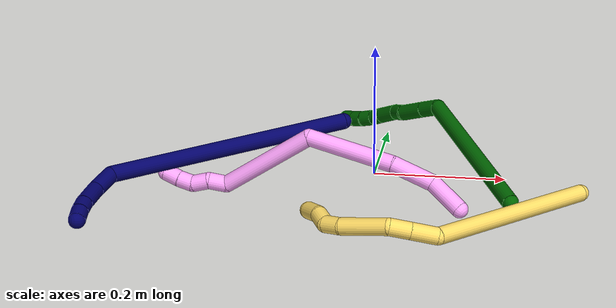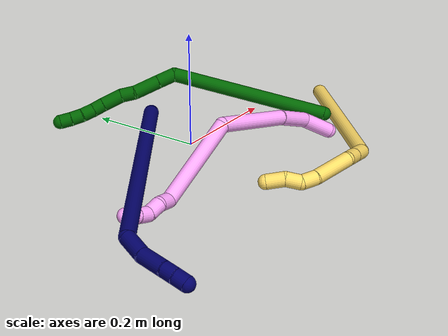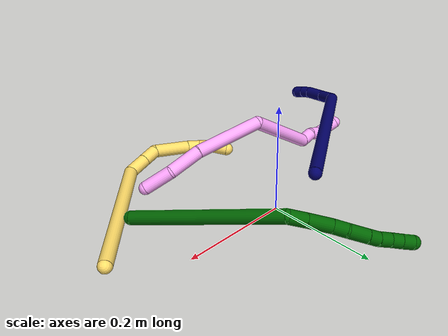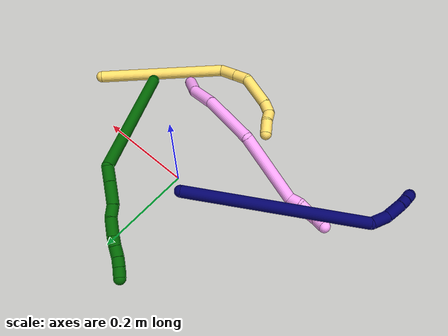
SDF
<sdf version="1.7">
 <world name="default">
  <model name="photoneo_s_sensor">
   <static>1</static>
   <pose>0 0 2 1.57079 1.57079 3.14159</pose>
   <link name="link">
    <inertial><mass>0.1</mass></inertial>
    <sensor name="sensor" type="depth">
     <update_rate>30</update_rate>
     <camera>
      <horizontal_fov>1.22</horizontal_fov>
      <image><width>1920</width><height>1200</height><format>B8G8R8</format></image>
      <clip><near>0.1</near><far>4</far></clip>
      <depth_camera><output>points</output></depth_camera>
     </camera>
     <plugin name="camera_plugin" filename="libgazebo_ros_depth_camera.so">
      <baseline>0.2</baseline>
      <alwaysOn>1</alwaysOn>
      <updateRate>0.0</updateRate>
      <cameraName>camera_ir</cameraName>
      <imageTopicName>/camera/color/image_raw</imageTopicName>
      <cameraInfoTopicName>/camera/color/camera_info</cameraInfoTopicName>
      <depthImageTopicName>/camera/depth/image_raw</depthImageTopicName>
      <depthImageCameraInfoTopicName>/camera/depth/camera_info</depthImageCameraInfoTopicName>
      <pointCloudTopicName>/camera/depth/points</pointCloudTopicName>
      <frameName>fr_optical</frameName>
      <pointCloudCutoff>0.1</pointCloudCutoff>
      <pointCloudCutoffMax>2.0</pointCloudCutoffMax>
      <distortionK1>0</distortionK1>
      <distortionK2>0</distortionK2>
      <distortionK3>0</distortionK3>
      <distortionT1>0</distortionT1>
      <distortionT2>0</distortionT2>
      <CxPrime>0</CxPrime>
      <Cx>0</Cx>
      <Cy>0</Cy>
      <focalLength>0</focalLength>
      <hackBaseline>0</hackBaseline>
     </plugin>
    </sensor>
   </link>
  </model>
  <model name="bin">
   <static>1</static>
   <link name="bottom">
    <collision name="collision-bottom">
     <pose>0 0 -0.01 0 -0 0</pose>
     <geometry><box><size>0.8 0.6 0.02</size></box></geometry>
     <surface>
      <friction><ode><mu>100</mu><mu2>100</mu2></ode></friction>
      <contact><collide_bitmask>65535</collide_bitmask></contact>
     </surface>
    </collision>
   </link>
   <link name="west_wall">
    <collision name="collision-west_wall">
     <pose>-0.41 0 0.1 0 -0 0</pose>
     <geometry><box><size>0.02 0.6 0.2</size></box></geometry>
     <surface>
      <friction><ode><mu>100</mu><mu2>100</mu2></ode></friction>
      <contact><collide_bitmask>65535</collide_bitmask></contact>
     </surface>
    </collision>
   </link>
   <link name="east_wall">
    <collision name="collision-east_wall">
     <pose>0.41 0 0.1 0 -0 0</pose>
     <geometry><box><size>0.02 0.6 0.2</size></box></geometry>
     <surface>
      <friction><ode><mu>100</mu><mu2>100</mu2></ode></friction>
      <contact><collide_bitmask>65535</collide_bitmask></contact>
     </surface>
    </collision>
   </link>
   <link name="south_wall">
    <collision name="collision-south_wall">
     <pose>0 -0.31 0.1 0 -0 0</pose>
     <geometry><box><size>0.8 0.02 0.2</size></box></geometry>
     <surface>
      <friction><ode><mu>100</mu><mu2>100</mu2></ode></friction>
      <contact><collide_bitmask>65535</collide_bitmask></contact>
     </surface>
    </collision>
   </link>
   <link name="north_wall">
    <collision name="collision-north_wall">
     <pose>0 0.31 0.1 0 -0 0</pose>
     <geometry><box><size>0.8 0.02 0.2</size></box></geometry>
     <surface>
      <friction><ode><mu>100</mu><mu2>100</mu2></ode></friction>
      <contact><collide_bitmask>65535</collide_bitmask></contact>
     </surface>
    </collision>
   </link>
  </model>
  <model name="4">
   <static>0</static>
   <link name="4">
    <collision name="collision-cylinder-e_1_1_4">
     <pose>0.000603 0.000169 0.027531 -0.006146 0.021887 -6.7e-05</pose>
     <geometry><cylinder><radius>0.0125</radius><length>0.055076</length></cylinder></geometry>
     <surface>
      <friction><ode><mu>1.16</mu><mu2>1.16</mu2><slip1>0</slip1><slip2>0</slip2></ode></friction>
      <contact><ode><kp>1e+06</kp><kd>1</kd><max_vel>0</max_vel><min_depth>0.001</min_depth></ode></contact>
     </surface>
    </collision>
    <visual name="visual-cylinder-e_1_1_4">
     <pose>0.000603 0.000169 0.027531 -0.006146 0.021887 -6.7e-05</pose>
     <geometry><cylinder><radius>0.0125</radius><length>0.055076</length></cylinder></geometry>
     <material><ambient>1 0.65098 0.996078 1</ambient></material>
    </visual>
    <collision name="collision-cylinder-e_2_4_5">
     <pose>-0.007168 -0.008127 0.084548 0.279569 -0.266467 -0.037711</pose>
     <geometry><cylinder><radius>0.0125</radius><length>0.063599</length></cylinder></geometry>
     <surface>
      <friction><ode><mu>1.16</mu><mu2>1.16</mu2><slip1>0</slip1><slip2>0</slip2></ode></friction>
      <contact><ode><kp>1e+06</kp><kd>1</kd><max_vel>0</max_vel><min_depth>0.001</min_depth></ode></contact>
     </surface>
    </collision>
    <visual name="visual-cylinder-e_2_4_5">
     <pose>-0.007168 -0.008127 0.084548 0.279569 -0.266467 -0.037711</pose>
     <geometry><cylinder><radius>0.0125</radius><length>0.063599</length></cylinder></geometry>
     <material><ambient>1 0.65098 0.996078 1</ambient></material>
    </visual>
    <collision name="collision-cylinder-e_3_5_6">
     <pose>-0.041887 -0.02685 0.17338 0.171162 -0.412355 -0.035882</pose>
     <geometry><cylinder><radius>0.0125</radius><length>0.131472</length></cylinder></geometry>
     <surface>
      <friction><ode><mu>1.16</mu><mu2>1.16</mu2><slip1>0</slip1><slip2>0</slip2></ode></friction>
      <contact><ode><kp>1e+06</kp><kd>1</kd><max_vel>0</max_vel><min_depth>0.001</min_depth></ode></contact>
     </surface>
    </collision>
    <visual name="visual-cylinder-e_3_5_6">
     <pose>-0.041887 -0.02685 0.17338 0.171162 -0.412355 -0.035882</pose>
     <geometry><cylinder><radius>0.0125</radius><length>0.131472</length></cylinder></geometry>
     <material><ambient>1 0.65098 0.996078 1</ambient></material>
    </visual>
    <collision name="collision-cylinder-e_4_6_7">
     <pose>-0.138296 -0.034363 0.261747 -0.094303 -1.17653 0.062931</pose>
     <geometry><cylinder><radius>0.0125</radius><length>0.151772</length></cylinder></geometry>
     <surface>
      <friction><ode><mu>1.16</mu><mu2>1.16</mu2><slip1>0</slip1><slip2>0</slip2></ode></friction>
      <contact><ode><kp>1e+06</kp><kd>1</kd><max_vel>0</max_vel><min_depth>0.001</min_depth></ode></contact>
     </surface>
    </collision>
    <visual name="visual-cylinder-e_4_6_7">
     <pose>-0.138296 -0.034363 0.261747 -0.094303 -1.17653 0.062931</pose>
     <geometry><cylinder><radius>0.0125</radius><length>0.151772</length></cylinder></geometry>
     <material><ambient>1 0.65098 0.996078 1</ambient></material>
    </visual>
    <collision name="collision-cylinder-e_5_7_8">
     <pose>-0.214568 -0.037287 0.301286 0.494279 -0.479132 -0.123095</pose>
     <geometry><cylinder><radius>0.0125</radius><length>0.026931</length></cylinder></geometry>
     <surface>
      <friction><ode><mu>1.16</mu><mu2>1.16</mu2><slip1>0</slip1><slip2>0</slip2></ode></friction>
      <contact><ode><kp>1e+06</kp><kd>1</kd><max_vel>0</max_vel><min_depth>0.001</min_depth></ode></contact>
     </surface>
    </collision>
    <visual name="visual-cylinder-e_5_7_8">
     <pose>-0.214568 -0.037287 0.301286 0.494279 -0.479132 -0.123095</pose>
     <geometry><cylinder><radius>0.0125</radius><length>0.026931</length></cylinder></geometry>
     <material><ambient>1 0.65098 0.996078 1</ambient></material>
    </visual>
    <collision name="collision-cylinder-e_6_8_9">
     <pose>-0.230663 -0.044607 0.319634 0.207849 -0.890484 -0.099462</pose>
     <geometry><cylinder><radius>0.0125</radius><length>0.025438</length></cylinder></geometry>
     <surface>
      <friction><ode><mu>1.16</mu><mu2>1.16</mu2><slip1>0</slip1><slip2>0</slip2></ode></friction>
      <contact><ode><kp>1e+06</kp><kd>1</kd><max_vel>0</max_vel><min_depth>0.001</min_depth></ode></contact>
     </surface>
    </collision>
    <visual name="visual-cylinder-e_6_8_9">
     <pose>-0.230663 -0.044607 0.319634 0.207849 -0.890484 -0.099462</pose>
     <geometry><cylinder><radius>0.0125</radius><length>0.025438</length></cylinder></geometry>
     <material><ambient>1 0.65098 0.996078 1</ambient></material>
    </visual>
    <collision name="collision-cylinder-e_7_9_10">
     <pose>-0.244689 -0.048873 0.337415 0.25701 -0.382433 -0.050018</pose>
     <geometry><cylinder><radius>0.0125</radius><length>0.022182</length></cylinder></geometry>
     <surface>
      <friction><ode><mu>1.16</mu><mu2>1.16</mu2><slip1>0</slip1><slip2>0</slip2></ode></friction>
      <contact><ode><kp>1e+06</kp><kd>1</kd><max_vel>0</max_vel><min_depth>0.001</min_depth></ode></contact>
     </surface>
    </collision>
    <visual name="visual-cylinder-e_7_9_10">
     <pose>-0.244689 -0.048873 0.337415 0.25701 -0.382433 -0.050018</pose>
     <geometry><cylinder><radius>0.0125</radius><length>0.022182</length></cylinder></geometry>
     <material><ambient>1 0.65098 0.996078 1</ambient></material>
    </visual>
    <collision name="collision-cylinder-e_8_10_2">
     <pose>-0.251954 -0.053623 0.358506 0.189305 -0.268913 -0.025683</pose>
     <geometry><cylinder><radius>0.0125</radius><length>0.023529</length></cylinder></geometry>
     <surface>
      <friction><ode><mu>1.16</mu><mu2>1.16</mu2><slip1>0</slip1><slip2>0</slip2></ode></friction>
      <contact><ode><kp>1e+06</kp><kd>1</kd><max_vel>0</max_vel><min_depth>0.001</min_depth></ode></contact>
     </surface>
    </collision>
    <visual name="visual-cylinder-e_8_10_2">
     <pose>-0.251954 -0.053623 0.358506 0.189305 -0.268913 -0.025683</pose>
     <geometry><cylinder><radius>0.0125</radius><length>0.023529</length></cylinder></geometry>
     <material><ambient>1 0.65098 0.996078 1</ambient></material>
    </visual>
    <collision name="collision-sphere-2">
     <pose>-0.255079 -0.055758 0.369645 0 -0 0</pose>
     <geometry><sphere><radius>0.0125</radius></sphere></geometry>
     <surface>
      <friction><ode><mu>1.16</mu><mu2>1.16</mu2><slip1>0</slip1><slip2>0</slip2></ode></friction>
      <contact><ode><kp>1e+06</kp><kd>1</kd><max_vel>0</max_vel><min_depth>0.001</min_depth></ode></contact>
     </surface>
    </collision>
    <visual name="visual-sphere-2">
     <pose>-0.255079 -0.055758 0.369645 0 -0 0</pose>
     <geometry><sphere><radius>0.0125</radius></sphere></geometry>
     <material><ambient>1 0.65098 0.996078 1</ambient></material>
    </visual>
    <collision name="collision-sphere-10">
     <pose>-0.248828 -0.051489 0.347367 0 -0 0</pose>
     <geometry><sphere><radius>0.0125</radius></sphere></geometry>
     <surface>
      <friction><ode><mu>1.16</mu><mu2>1.16</mu2><slip1>0</slip1><slip2>0</slip2></ode></friction>
      <contact><ode><kp>1e+06</kp><kd>1</kd><max_vel>0</max_vel><min_depth>0.001</min_depth></ode></contact>
     </surface>
    </collision>
    <visual name="visual-sphere-10">
     <pose>-0.248828 -0.051489 0.347367 0 -0 0</pose>
     <geometry><sphere><radius>0.0125</radius></sphere></geometry>
     <material><ambient>1 0.65098 0.996078 1</ambient></material>
    </visual>
    <collision name="collision-sphere-9">
     <pose>-0.24055 -0.046258 0.327463 0 -0 0</pose>
     <geometry><sphere><radius>0.0125</radius></sphere></geometry>
     <surface>
      <friction><ode><mu>1.16</mu><mu2>1.16</mu2><slip1>0</slip1><slip2>0</slip2></ode></friction>
      <contact><ode><kp>1e+06</kp><kd>1</kd><max_vel>0</max_vel><min_depth>0.001</min_depth></ode></contact>
     </surface>
    </collision>
    <visual name="visual-sphere-9">
     <pose>-0.24055 -0.046258 0.327463 0 -0 0</pose>
     <geometry><sphere><radius>0.0125</radius></sphere></geometry>
     <material><ambient>1 0.65098 0.996078 1</ambient></material>
    </visual>
    <collision name="collision-sphere-4">
     <pose>0.001205 0.000338 0.055062 0 -0 0</pose>
     <geometry><sphere><radius>0.0125</radius></sphere></geometry>
     <surface>
      <friction><ode><mu>1.16</mu><mu2>1.16</mu2><slip1>0</slip1><slip2>0</slip2></ode></friction>
      <contact><ode><kp>1e+06</kp><kd>1</kd><max_vel>0</max_vel><min_depth>0.001</min_depth></ode></contact>
     </surface>
    </collision>
    <visual name="visual-sphere-4">
     <pose>0.001205 0.000338 0.055062 0 -0 0</pose>
     <geometry><sphere><radius>0.0125</radius></sphere></geometry>
     <material><ambient>1 0.65098 0.996078 1</ambient></material>
    </visual>
    <collision name="collision-sphere-1">
     <geometry><sphere><radius>0.0125</radius></sphere></geometry>
     <surface>
      <friction><ode><mu>1.16</mu><mu2>1.16</mu2><slip1>0</slip1><slip2>0</slip2></ode></friction>
      <contact><ode><kp>1e+06</kp><kd>1</kd><max_vel>0</max_vel><min_depth>0.001</min_depth></ode></contact>
     </surface>
    </collision>
    <visual name="visual-sphere-1">
     <geometry><sphere><radius>0.0125</radius></sphere></geometry>
     <material><ambient>1 0.65098 0.996078 1</ambient></material>
    </visual>
    <collision name="collision-sphere-8">
     <pose>-0.220775 -0.042956 0.311806 0 -0 0</pose>
     <geometry><sphere><radius>0.0125</radius></sphere></geometry>
     <surface>
      <friction><ode><mu>1.16</mu><mu2>1.16</mu2><slip1>0</slip1><slip2>0</slip2></ode></friction>
      <contact><ode><kp>1e+06</kp><kd>1</kd><max_vel>0</max_vel><min_depth>0.001</min_depth></ode></contact>
     </surface>
    </collision>
    <visual name="visual-sphere-8">
     <pose>-0.220775 -0.042956 0.311806 0 -0 0</pose>
     <geometry><sphere><radius>0.0125</radius></sphere></geometry>
     <material><ambient>1 0.65098 0.996078 1</ambient></material>
    </visual>
    <collision name="collision-sphere-5">
     <pose>-0.015542 -0.016592 0.114035 0 -0 0</pose>
     <geometry><sphere><radius>0.0125</radius></sphere></geometry>
     <surface>
      <friction><ode><mu>1.16</mu><mu2>1.16</mu2><slip1>0</slip1><slip2>0</slip2></ode></friction>
      <contact><ode><kp>1e+06</kp><kd>1</kd><max_vel>0</max_vel><min_depth>0.001</min_depth></ode></contact>
     </surface>
    </collision>
    <visual name="visual-sphere-5">
     <pose>-0.015542 -0.016592 0.114035 0 -0 0</pose>
     <geometry><sphere><radius>0.0125</radius></sphere></geometry>
     <material><ambient>1 0.65098 0.996078 1</ambient></material>
    </visual>
    <collision name="collision-sphere-6">
     <pose>-0.068232 -0.037108 0.232726 0 -0 0</pose>
     <geometry><sphere><radius>0.0125</radius></sphere></geometry>
     <surface>
      <friction><ode><mu>1.16</mu><mu2>1.16</mu2><slip1>0</slip1><slip2>0</slip2></ode></friction>
      <contact><ode><kp>1e+06</kp><kd>1</kd><max_vel>0</max_vel><min_depth>0.001</min_depth></ode></contact>
     </surface>
    </collision>
    <visual name="visual-sphere-6">
     <pose>-0.068232 -0.037108 0.232726 0 -0 0</pose>
     <geometry><sphere><radius>0.0125</radius></sphere></geometry>
     <material><ambient>1 0.65098 0.996078 1</ambient></material>
    </visual>
    <collision name="collision-sphere-7">
     <pose>-0.20836 -0.031618 0.290767 0 -0 0</pose>
     <geometry><sphere><radius>0.0125</radius></sphere></geometry>
     <surface>
      <friction><ode><mu>1.16</mu><mu2>1.16</mu2><slip1>0</slip1><slip2>0</slip2></ode></friction>
      <contact><ode><kp>1e+06</kp><kd>1</kd><max_vel>0</max_vel><min_depth>0.001</min_depth></ode></contact>
     </surface>
    </collision>
    <visual name="visual-sphere-7">
     <pose>-0.20836 -0.031618 0.290767 0 -0 0</pose>
     <geometry><sphere><radius>0.0125</radius></sphere></geometry>
     <material><ambient>1 0.65098 0.996078 1</ambient></material>
    </visual>
    <inertial>
     <pose>-0.099842 -0.027475 0.203158 0 -0 0</pose>
     <mass>0.5</mass>
     <inertia>
      <ixx>0.000318</ixx>
      <ixy>0</ixy>
      <ixz>0</ixz>
      <iyy>0.000532</iyy>
      <iyz>0</iyz>
      <izz>0.00042</izz>
     </inertia>
    </inertial>
   </link>
   <pose>0.14333 -0.189283 0.021952 -0.662172 -0.900655 0.227795</pose>
  </model>
  <model name="5">
   <static>0</static>
   <link name="5">
    <collision name="collision-cylinder-e_1_1_4">
     <pose>-0.107692 -0.016178 0.083632 0.191083 -0.901578 -0.092706</pose>
     <geometry><cylinder><radius>0.0125</radius><length>0.274618</length></cylinder></geometry>
     <surface>
      <friction><ode><mu>1.16</mu><mu2>1.16</mu2><slip1>0</slip1><slip2>0</slip2></ode></friction>
      <contact><ode><kp>1e+06</kp><kd>1</kd><max_vel>0</max_vel><min_depth>0.001</min_depth></ode></contact>
     </surface>
    </collision>
    <visual name="visual-cylinder-e_1_1_4">
     <pose>-0.107692 -0.016178 0.083632 0.191083 -0.901578 -0.092706</pose>
     <geometry><cylinder><radius>0.0125</radius><length>0.274618</length></cylinder></geometry>
     <material><ambient>1 0.858824 0.4 1</ambient></material>
    </visual>
    <collision name="collision-cylinder-e_2_4_5">
     <pose>-0.226118 -0.046026 0.175759 1.01476 -0.588171 -0.333615</pose>
     <geometry><cylinder><radius>0.0125</radius><length>0.038689</length></cylinder></geometry>
     <surface>
      <friction><ode><mu>1.16</mu><mu2>1.16</mu2><slip1>0</slip1><slip2>0</slip2></ode></friction>
      <contact><ode><kp>1e+06</kp><kd>1</kd><max_vel>0</max_vel><min_depth>0.001</min_depth></ode></contact>
     </surface>
    </collision>
    <visual name="visual-cylinder-e_2_4_5">
     <pose>-0.226118 -0.046026 0.175759 1.01476 -0.588171 -0.333615</pose>
     <geometry><cylinder><radius>0.0125</radius><length>0.038689</length></cylinder></geometry>
     <material><ambient>1 0.858824 0.4 1</ambient></material>
    </visual>
    <collision name="collision-cylinder-e_3_5_6">
     <pose>-0.245371 -0.070597 0.191095 1.0104 -0.584748 -0.329924</pose>
     <geometry><cylinder><radius>0.0125</radius><length>0.030871</length></cylinder></geometry>
     <surface>
      <friction><ode><mu>1.16</mu><mu2>1.16</mu2><slip1>0</slip1><slip2>0</slip2></ode></friction>
      <contact><ode><kp>1e+06</kp><kd>1</kd><max_vel>0</max_vel><min_depth>0.001</min_depth></ode></contact>
     </surface>
    </collision>
    <visual name="visual-cylinder-e_3_5_6">
     <pose>-0.245371 -0.070597 0.191095 1.0104 -0.584748 -0.329924</pose>
     <geometry><cylinder><radius>0.0125</radius><length>0.030871</length></cylinder></geometry>
     <material><ambient>1 0.858824 0.4 1</ambient></material>
    </visual>
    <collision name="collision-cylinder-e_4_6_7">
     <pose>-0.255625 -0.110318 0.219057 0.938341 -0.048492 -0.024585</pose>
     <geometry><cylinder><radius>0.0125</radius><length>0.071543</length></cylinder></geometry>
     <surface>
      <friction><ode><mu>1.16</mu><mu2>1.16</mu2><slip1>0</slip1><slip2>0</slip2></ode></friction>
      <contact><ode><kp>1e+06</kp><kd>1</kd><max_vel>0</max_vel><min_depth>0.001</min_depth></ode></contact>
     </surface>
    </collision>
    <visual name="visual-cylinder-e_4_6_7">
     <pose>-0.255625 -0.110318 0.219057 0.938341 -0.048492 -0.024585</pose>
     <geometry><cylinder><radius>0.0125</radius><length>0.071543</length></cylinder></geometry>
     <material><ambient>1 0.858824 0.4 1</ambient></material>
    </visual>
    <collision name="collision-cylinder-e_5_7_8">
     <pose>-0.255662 -0.150943 0.246094 1.10631 0.127836 0.078999</pose>
     <geometry><cylinder><radius>0.0125</radius><length>0.02663</length></cylinder></geometry>
     <surface>
      <friction><ode><mu>1.16</mu><mu2>1.16</mu2><slip1>0</slip1><slip2>0</slip2></ode></friction>
      <contact><ode><kp>1e+06</kp><kd>1</kd><max_vel>0</max_vel><min_depth>0.001</min_depth></ode></contact>
     </surface>
    </collision>
    <visual name="visual-cylinder-e_5_7_8">
     <pose>-0.255662 -0.150943 0.246094 1.10631 0.127836 0.078999</pose>
     <geometry><cylinder><radius>0.0125</radius><length>0.02663</length></cylinder></geometry>
     <material><ambient>1 0.858824 0.4 1</ambient></material>
    </visual>
    <collision name="collision-cylinder-e_6_8_9">
     <pose>-0.248874 -0.174706 0.2505 1.69638 0.399645 0.451571</pose>
     <geometry><cylinder><radius>0.0125</radius><length>0.026162</length></cylinder></geometry>
     <surface>
      <friction><ode><mu>1.16</mu><mu2>1.16</mu2><slip1>0</slip1><slip2>0</slip2></ode></friction>
      <contact><ode><kp>1e+06</kp><kd>1</kd><max_vel>0</max_vel><min_depth>0.001</min_depth></ode></contact>
     </surface>
    </collision>
    <visual name="visual-cylinder-e_6_8_9">
     <pose>-0.248874 -0.174706 0.2505 1.69638 0.399645 0.451571</pose>
     <geometry><cylinder><radius>0.0125</radius><length>0.026162</length></cylinder></geometry>
     <material><ambient>1 0.858824 0.4 1</ambient></material>
    </visual>
    <collision name="collision-cylinder-e_7_9_2">
     <pose>-0.235973 -0.199887 0.252443 1.31545 0.519165 0.404678</pose>
     <geometry><cylinder><radius>0.0125</radius><length>0.031487</length></cylinder></geometry>
     <surface>
      <friction><ode><mu>1.16</mu><mu2>1.16</mu2><slip1>0</slip1><slip2>0</slip2></ode></friction>
      <contact><ode><kp>1e+06</kp><kd>1</kd><max_vel>0</max_vel><min_depth>0.001</min_depth></ode></contact>
     </surface>
    </collision>
    <visual name="visual-cylinder-e_7_9_2">
     <pose>-0.235973 -0.199887 0.252443 1.31545 0.519165 0.404678</pose>
     <geometry><cylinder><radius>0.0125</radius><length>0.031487</length></cylinder></geometry>
     <material><ambient>1 0.858824 0.4 1</ambient></material>
    </visual>
    <collision name="collision-sphere-2">
     <pose>-0.228162 -0.213113 0.255896 0 -0 0</pose>
     <geometry><sphere><radius>0.0125</radius></sphere></geometry>
     <surface>
      <friction><ode><mu>1.16</mu><mu2>1.16</mu2><slip1>0</slip1><slip2>0</slip2></ode></friction>
      <contact><ode><kp>1e+06</kp><kd>1</kd><max_vel>0</max_vel><min_depth>0.001</min_depth></ode></contact>
     </surface>
    </collision>
    <visual name="visual-sphere-2">
     <pose>-0.228162 -0.213113 0.255896 0 -0 0</pose>
     <geometry><sphere><radius>0.0125</radius></sphere></geometry>
     <material><ambient>1 0.858824 0.4 1</ambient></material>
    </visual>
    <collision name="collision-sphere-9">
     <pose>-0.243785 -0.186661 0.248991 0 -0 0</pose>
     <geometry><sphere><radius>0.0125</radius></sphere></geometry>
     <surface>
      <friction><ode><mu>1.16</mu><mu2>1.16</mu2><slip1>0</slip1><slip2>0</slip2></ode></friction>
      <contact><ode><kp>1e+06</kp><kd>1</kd><max_vel>0</max_vel><min_depth>0.001</min_depth></ode></contact>
     </surface>
    </collision>
    <visual name="visual-sphere-9">
     <pose>-0.243785 -0.186661 0.248991 0 -0 0</pose>
     <geometry><sphere><radius>0.0125</radius></sphere></geometry>
     <material><ambient>1 0.858824 0.4 1</ambient></material>
    </visual>
    <collision name="collision-sphere-4">
     <pose>-0.215385 -0.032356 0.167265 0 -0 0</pose>
     <geometry><sphere><radius>0.0125</radius></sphere></geometry>
     <surface>
      <friction><ode><mu>1.16</mu><mu2>1.16</mu2><slip1>0</slip1><slip2>0</slip2></ode></friction>
      <contact><ode><kp>1e+06</kp><kd>1</kd><max_vel>0</max_vel><min_depth>0.001</min_depth></ode></contact>
     </surface>
    </collision>
    <visual name="visual-sphere-4">
     <pose>-0.215385 -0.032356 0.167265 0 -0 0</pose>
     <geometry><sphere><radius>0.0125</radius></sphere></geometry>
     <material><ambient>1 0.858824 0.4 1</ambient></material>
    </visual>
    <collision name="collision-sphere-1">
     <geometry><sphere><radius>0.0125</radius></sphere></geometry>
     <surface>
      <friction><ode><mu>1.16</mu><mu2>1.16</mu2><slip1>0</slip1><slip2>0</slip2></ode></friction>
      <contact><ode><kp>1e+06</kp><kd>1</kd><max_vel>0</max_vel><min_depth>0.001</min_depth></ode></contact>
     </surface>
    </collision>
    <visual name="visual-sphere-1">
     <geometry><sphere><radius>0.0125</radius></sphere></geometry>
     <material><ambient>1 0.858824 0.4 1</ambient></material>
    </visual>
    <collision name="collision-sphere-8">
     <pose>-0.253964 -0.162751 0.252009 0 -0 0</pose>
     <geometry><sphere><radius>0.0125</radius></sphere></geometry>
     <surface>
      <friction><ode><mu>1.16</mu><mu2>1.16</mu2><slip1>0</slip1><slip2>0</slip2></ode></friction>
      <contact><ode><kp>1e+06</kp><kd>1</kd><max_vel>0</max_vel><min_depth>0.001</min_depth></ode></contact>
     </surface>
    </collision>
    <visual name="visual-sphere-8">
     <pose>-0.253964 -0.162751 0.252009 0 -0 0</pose>
     <geometry><sphere><radius>0.0125</radius></sphere></geometry>
     <material><ambient>1 0.858824 0.4 1</ambient></material>
    </visual>
    <collision name="collision-sphere-5">
     <pose>-0.236851 -0.059695 0.184254 0 -0 0</pose>
     <geometry><sphere><radius>0.0125</radius></sphere></geometry>
     <surface>
      <friction><ode><mu>1.16</mu><mu2>1.16</mu2><slip1>0</slip1><slip2>0</slip2></ode></friction>
      <contact><ode><kp>1e+06</kp><kd>1</kd><max_vel>0</max_vel><min_depth>0.001</min_depth></ode></contact>
     </surface>
    </collision>
    <visual name="visual-sphere-5">
     <pose>-0.236851 -0.059695 0.184254 0 -0 0</pose>
     <geometry><sphere><radius>0.0125</radius></sphere></geometry>
     <material><ambient>1 0.858824 0.4 1</ambient></material>
    </visual>
    <collision name="collision-sphere-6">
     <pose>-0.253891 -0.081499 0.197936 0 -0 0</pose>
     <geometry><sphere><radius>0.0125</radius></sphere></geometry>
     <surface>
      <friction><ode><mu>1.16</mu><mu2>1.16</mu2><slip1>0</slip1><slip2>0</slip2></ode></friction>
      <contact><ode><kp>1e+06</kp><kd>1</kd><max_vel>0</max_vel><min_depth>0.001</min_depth></ode></contact>
     </surface>
    </collision>
    <visual name="visual-sphere-6">
     <pose>-0.253891 -0.081499 0.197936 0 -0 0</pose>
     <geometry><sphere><radius>0.0125</radius></sphere></geometry>
     <material><ambient>1 0.858824 0.4 1</ambient></material>
    </visual>
    <collision name="collision-sphere-7">
     <pose>-0.257359 -0.139136 0.240178 0 -0 0</pose>
     <geometry><sphere><radius>0.0125</radius></sphere></geometry>
     <surface>
      <friction><ode><mu>1.16</mu><mu2>1.16</mu2><slip1>0</slip1><slip2>0</slip2></ode></friction>
      <contact><ode><kp>1e+06</kp><kd>1</kd><max_vel>0</max_vel><min_depth>0.001</min_depth></ode></contact>
     </surface>
    </collision>
    <visual name="visual-sphere-7">
     <pose>-0.257359 -0.139136 0.240178 0 -0 0</pose>
     <geometry><sphere><radius>0.0125</radius></sphere></geometry>
     <material><ambient>1 0.858824 0.4 1</ambient></material>
    </visual>
    <inertial>
     <pose>-0.16987 -0.062359 0.144788 0 -0 0</pose>
     <mass>0.5</mass>
     <inertia>
      <ixx>0.001003</ixx>
      <ixy>0</ixy>
      <ixz>0</ixz>
      <iyy>0.001633</iyy>
      <iyz>0</iyz>
      <izz>0.001632</izz>
     </inertia>
    </inertial>
   </link>
   <pose>0.312536 -0.071699 0.011496 -2.71885 0.573984 1.15809</pose>
  </model>
  <model name="6">
   <static>0</static>
   <link name="6">
    <collision name="collision-cylinder-e_1_1_4">
     <pose>-0.104817 0.087419 0.026318 -1.27837 -0.854244 0.652424</pose>
     <geometry><cylinder><radius>0.0125</radius><length>0.278002</length></cylinder></geometry>
     <surface>
      <friction><ode><mu>1.16</mu><mu2>1.16</mu2><slip1>0</slip1><slip2>0</slip2></ode></friction>
      <contact><ode><kp>1e+06</kp><kd>1</kd><max_vel>0</max_vel><min_depth>0.001</min_depth></ode></contact>
     </surface>
    </collision>
    <visual name="visual-cylinder-e_1_1_4">
     <pose>-0.104817 0.087419 0.026318 -1.27837 -0.854244 0.652424</pose>
     <geometry><cylinder><radius>0.0125</radius><length>0.278002</length></cylinder></geometry>
     <material><ambient>0 0.392157 0.003922 1</ambient></material>
    </visual>
    <collision name="collision-cylinder-e_2_4_5">
     <pose>-0.212906 0.190435 0.051827 -1.62261 -0.206498 0.2174</pose>
     <geometry><cylinder><radius>0.0125</radius><length>0.031914</length></cylinder></geometry>
     <surface>
      <friction><ode><mu>1.16</mu><mu2>1.16</mu2><slip1>0</slip1><slip2>0</slip2></ode></friction>
      <contact><ode><kp>1e+06</kp><kd>1</kd><max_vel>0</max_vel><min_depth>0.001</min_depth></ode></contact>
     </surface>
    </collision>
    <visual name="visual-cylinder-e_2_4_5">
     <pose>-0.212906 0.190435 0.051827 -1.62261 -0.206498 0.2174</pose>
     <geometry><cylinder><radius>0.0125</radius><length>0.031914</length></cylinder></geometry>
     <material><ambient>0 0.392157 0.003922 1</ambient></material>
    </visual>
    <collision name="collision-cylinder-e_3_5_6">
     <pose>-0.220626 0.22845 0.05018 -1.60815 -0.195727 0.203128</pose>
     <geometry><cylinder><radius>0.0125</radius><length>0.045741</length></cylinder></geometry>
     <surface>
      <friction><ode><mu>1.16</mu><mu2>1.16</mu2><slip1>0</slip1><slip2>0</slip2></ode></friction>
      <contact><ode><kp>1e+06</kp><kd>1</kd><max_vel>0</max_vel><min_depth>0.001</min_depth></ode></contact>
     </surface>
    </collision>
    <visual name="visual-cylinder-e_3_5_6">
     <pose>-0.220626 0.22845 0.05018 -1.60815 -0.195727 0.203128</pose>
     <geometry><cylinder><radius>0.0125</radius><length>0.045741</length></cylinder></geometry>
     <material><ambient>0 0.392157 0.003922 1</ambient></material>
    </visual>
    <collision name="collision-cylinder-e_4_6_7">
     <pose>-0.229743 0.262244 0.051835 -1.35511 -0.381347 0.308153</pose>
     <geometry><cylinder><radius>0.0125</radius><length>0.025094</length></cylinder></geometry>
     <surface>
      <friction><ode><mu>1.16</mu><mu2>1.16</mu2><slip1>0</slip1><slip2>0</slip2></ode></friction>
      <contact><ode><kp>1e+06</kp><kd>1</kd><max_vel>0</max_vel><min_depth>0.001</min_depth></ode></contact>
     </surface>
    </collision>
    <visual name="visual-cylinder-e_4_6_7">
     <pose>-0.229743 0.262244 0.051835 -1.35511 -0.381347 0.308153</pose>
     <geometry><cylinder><radius>0.0125</radius><length>0.025094</length></cylinder></geometry>
     <material><ambient>0 0.392157 0.003922 1</ambient></material>
    </visual>
    <collision name="collision-cylinder-e_5_7_8">
     <pose>-0.237401 0.291433 0.054339 -1.57011 -0.166177 0.166064</pose>
     <geometry><cylinder><radius>0.0125</radius><length>0.036124</length></cylinder></geometry>
     <surface>
      <friction><ode><mu>1.16</mu><mu2>1.16</mu2><slip1>0</slip1><slip2>0</slip2></ode></friction>
      <contact><ode><kp>1e+06</kp><kd>1</kd><max_vel>0</max_vel><min_depth>0.001</min_depth></ode></contact>
     </surface>
    </collision>
    <visual name="visual-cylinder-e_5_7_8">
     <pose>-0.237401 0.291433 0.054339 -1.57011 -0.166177 0.166064</pose>
     <geometry><cylinder><radius>0.0125</radius><length>0.036124</length></cylinder></geometry>
     <material><ambient>0 0.392157 0.003922 1</ambient></material>
    </visual>
    <collision name="collision-cylinder-e_6_8_9">
     <pose>-0.241641 0.319181 0.05388 -1.61825 -0.125238 0.13131</pose>
     <geometry><cylinder><radius>0.0125</radius><length>0.02005</length></cylinder></geometry>
     <surface>
      <friction><ode><mu>1.16</mu><mu2>1.16</mu2><slip1>0</slip1><slip2>0</slip2></ode></friction>
      <contact><ode><kp>1e+06</kp><kd>1</kd><max_vel>0</max_vel><min_depth>0.001</min_depth></ode></contact>
     </surface>
    </collision>
    <visual name="visual-cylinder-e_6_8_9">
     <pose>-0.241641 0.319181 0.05388 -1.61825 -0.125238 0.13131</pose>
     <geometry><cylinder><radius>0.0125</radius><length>0.02005</length></cylinder></geometry>
     <material><ambient>0 0.392157 0.003922 1</ambient></material>
    </visual>
    <collision name="collision-cylinder-e_7_9_10">
     <pose>-0.245173 0.339901 0.051514 -1.74461 -0.20533 0.244168</pose>
     <geometry><cylinder><radius>0.0125</radius><length>0.022368</length></cylinder></geometry>
     <surface>
      <friction><ode><mu>1.16</mu><mu2>1.16</mu2><slip1>0</slip1><slip2>0</slip2></ode></friction>
      <contact><ode><kp>1e+06</kp><kd>1</kd><max_vel>0</max_vel><min_depth>0.001</min_depth></ode></contact>
     </surface>
    </collision>
    <visual name="visual-cylinder-e_7_9_10">
     <pose>-0.245173 0.339901 0.051514 -1.74461 -0.20533 0.244168</pose>
     <geometry><cylinder><radius>0.0125</radius><length>0.022368</length></cylinder></geometry>
     <material><ambient>0 0.392157 0.003922 1</ambient></material>
    </visual>
    <collision name="collision-cylinder-e_8_10_11">
     <pose>-0.250467 0.360368 0.048897 -1.64535 -0.300942 0.323867</pose>
     <geometry><cylinder><radius>0.0125</radius><length>0.020334</length></cylinder></geometry>
     <surface>
      <friction><ode><mu>1.16</mu><mu2>1.16</mu2><slip1>0</slip1><slip2>0</slip2></ode></friction>
      <contact><ode><kp>1e+06</kp><kd>1</kd><max_vel>0</max_vel><min_depth>0.001</min_depth></ode></contact>
     </surface>
    </collision>
    <visual name="visual-cylinder-e_8_10_11">
     <pose>-0.250467 0.360368 0.048897 -1.64535 -0.300942 0.323867</pose>
     <geometry><cylinder><radius>0.0125</radius><length>0.020334</length></cylinder></geometry>
     <material><ambient>0 0.392157 0.003922 1</ambient></material>
    </visual>
    <collision name="collision-cylinder-e_9_11_2">
     <pose>-0.257229 0.37951 0.047683 -1.62269 -0.376758 0.396327</pose>
     <geometry><cylinder><radius>0.0125</radius><length>0.020372</length></cylinder></geometry>
     <surface>
      <friction><ode><mu>1.16</mu><mu2>1.16</mu2><slip1>0</slip1><slip2>0</slip2></ode></friction>
      <contact><ode><kp>1e+06</kp><kd>1</kd><max_vel>0</max_vel><min_depth>0.001</min_depth></ode></contact>
     </surface>
    </collision>
    <visual name="visual-cylinder-e_9_11_2">
     <pose>-0.257229 0.37951 0.047683 -1.62269 -0.376758 0.396327</pose>
     <geometry><cylinder><radius>0.0125</radius><length>0.020372</length></cylinder></geometry>
     <material><ambient>0 0.392157 0.003922 1</ambient></material>
    </visual>
    <collision name="collision-sphere-2">
     <pose>-0.260976 0.388969 0.047191 0 -0 0</pose>
     <geometry><sphere><radius>0.0125</radius></sphere></geometry>
     <surface>
      <friction><ode><mu>1.16</mu><mu2>1.16</mu2><slip1>0</slip1><slip2>0</slip2></ode></friction>
      <contact><ode><kp>1e+06</kp><kd>1</kd><max_vel>0</max_vel><min_depth>0.001</min_depth></ode></contact>
     </surface>
    </collision>
    <visual name="visual-sphere-2">
     <pose>-0.260976 0.388969 0.047191 0 -0 0</pose>
     <geometry><sphere><radius>0.0125</radius></sphere></geometry>
     <material><ambient>0 0.392157 0.003922 1</ambient></material>
    </visual>
    <collision name="collision-sphere-11">
     <pose>-0.253481 0.370052 0.048174 0 -0 0</pose>
     <geometry><sphere><radius>0.0125</radius></sphere></geometry>
     <surface>
      <friction><ode><mu>1.16</mu><mu2>1.16</mu2><slip1>0</slip1><slip2>0</slip2></ode></friction>
      <contact><ode><kp>1e+06</kp><kd>1</kd><max_vel>0</max_vel><min_depth>0.001</min_depth></ode></contact>
     </surface>
    </collision>
    <visual name="visual-sphere-11">
     <pose>-0.253481 0.370052 0.048174 0 -0 0</pose>
     <geometry><sphere><radius>0.0125</radius></sphere></geometry>
     <material><ambient>0 0.392157 0.003922 1</ambient></material>
    </visual>
    <collision name="collision-sphere-10">
     <pose>-0.247454 0.350685 0.049621 0 -0 0</pose>
     <geometry><sphere><radius>0.0125</radius></sphere></geometry>
     <surface>
      <friction><ode><mu>1.16</mu><mu2>1.16</mu2><slip1>0</slip1><slip2>0</slip2></ode></friction>
      <contact><ode><kp>1e+06</kp><kd>1</kd><max_vel>0</max_vel><min_depth>0.001</min_depth></ode></contact>
     </surface>
    </collision>
    <visual name="visual-sphere-10">
     <pose>-0.247454 0.350685 0.049621 0 -0 0</pose>
     <geometry><sphere><radius>0.0125</radius></sphere></geometry>
     <material><ambient>0 0.392157 0.003922 1</ambient></material>
    </visual>
    <collision name="collision-sphere-9">
     <pose>-0.242893 0.329116 0.053408 0 -0 0</pose>
     <geometry><sphere><radius>0.0125</radius></sphere></geometry>
     <surface>
      <friction><ode><mu>1.16</mu><mu2>1.16</mu2><slip1>0</slip1><slip2>0</slip2></ode></friction>
      <contact><ode><kp>1e+06</kp><kd>1</kd><max_vel>0</max_vel><min_depth>0.001</min_depth></ode></contact>
     </surface>
    </collision>
    <visual name="visual-sphere-9">
     <pose>-0.242893 0.329116 0.053408 0 -0 0</pose>
     <geometry><sphere><radius>0.0125</radius></sphere></geometry>
     <material><ambient>0 0.392157 0.003922 1</ambient></material>
    </visual>
    <collision name="collision-sphere-4">
     <pose>-0.209635 0.174838 0.052636 0 -0 0</pose>
     <geometry><sphere><radius>0.0125</radius></sphere></geometry>
     <surface>
      <friction><ode><mu>1.16</mu><mu2>1.16</mu2><slip1>0</slip1><slip2>0</slip2></ode></friction>
      <contact><ode><kp>1e+06</kp><kd>1</kd><max_vel>0</max_vel><min_depth>0.001</min_depth></ode></contact>
     </surface>
    </collision>
    <visual name="visual-sphere-4">
     <pose>-0.209635 0.174838 0.052636 0 -0 0</pose>
     <geometry><sphere><radius>0.0125</radius></sphere></geometry>
     <material><ambient>0 0.392157 0.003922 1</ambient></material>
    </visual>
    <collision name="collision-sphere-1">
     <geometry><sphere><radius>0.0125</radius></sphere></geometry>
     <surface>
      <friction><ode><mu>1.16</mu><mu2>1.16</mu2><slip1>0</slip1><slip2>0</slip2></ode></friction>
      <contact><ode><kp>1e+06</kp><kd>1</kd><max_vel>0</max_vel><min_depth>0.001</min_depth></ode></contact>
     </surface>
    </collision>
    <visual name="visual-sphere-1">
     <geometry><sphere><radius>0.0125</radius></sphere></geometry>
     <material><ambient>0 0.392157 0.003922 1</ambient></material>
    </visual>
    <collision name="collision-sphere-8">
     <pose>-0.240388 0.309246 0.054351 0 -0 0</pose>
     <geometry><sphere><radius>0.0125</radius></sphere></geometry>
     <surface>
      <friction><ode><mu>1.16</mu><mu2>1.16</mu2><slip1>0</slip1><slip2>0</slip2></ode></friction>
      <contact><ode><kp>1e+06</kp><kd>1</kd><max_vel>0</max_vel><min_depth>0.001</min_depth></ode></contact>
     </surface>
    </collision>
    <visual name="visual-sphere-8">
     <pose>-0.240388 0.309246 0.054351 0 -0 0</pose>
     <geometry><sphere><radius>0.0125</radius></sphere></geometry>
     <material><ambient>0 0.392157 0.003922 1</ambient></material>
    </visual>
    <collision name="collision-sphere-5">
     <pose>-0.216178 0.206032 0.051018 0 -0 0</pose>
     <geometry><sphere><radius>0.0125</radius></sphere></geometry>
     <surface>
      <friction><ode><mu>1.16</mu><mu2>1.16</mu2><slip1>0</slip1><slip2>0</slip2></ode></friction>
      <contact><ode><kp>1e+06</kp><kd>1</kd><max_vel>0</max_vel><min_depth>0.001</min_depth></ode></contact>
     </surface>
    </collision>
    <visual name="visual-sphere-5">
     <pose>-0.216178 0.206032 0.051018 0 -0 0</pose>
     <geometry><sphere><radius>0.0125</radius></sphere></geometry>
     <material><ambient>0 0.392157 0.003922 1</ambient></material>
    </visual>
    <collision name="collision-sphere-6">
     <pose>-0.225074 0.250868 0.049342 0 -0 0</pose>
     <geometry><sphere><radius>0.0125</radius></sphere></geometry>
     <surface>
      <friction><ode><mu>1.16</mu><mu2>1.16</mu2><slip1>0</slip1><slip2>0</slip2></ode></friction>
      <contact><ode><kp>1e+06</kp><kd>1</kd><max_vel>0</max_vel><min_depth>0.001</min_depth></ode></contact>
     </surface>
    </collision>
    <visual name="visual-sphere-6">
     <pose>-0.225074 0.250868 0.049342 0 -0 0</pose>
     <geometry><sphere><radius>0.0125</radius></sphere></geometry>
     <material><ambient>0 0.392157 0.003922 1</ambient></material>
    </visual>
    <collision name="collision-sphere-7">
     <pose>-0.234413 0.27362 0.054327 0 -0 0</pose>
     <geometry><sphere><radius>0.0125</radius></sphere></geometry>
     <surface>
      <friction><ode><mu>1.16</mu><mu2>1.16</mu2><slip1>0</slip1><slip2>0</slip2></ode></friction>
      <contact><ode><kp>1e+06</kp><kd>1</kd><max_vel>0</max_vel><min_depth>0.001</min_depth></ode></contact>
     </surface>
    </collision>
    <visual name="visual-sphere-7">
     <pose>-0.234413 0.27362 0.054327 0 -0 0</pose>
     <geometry><sphere><radius>0.0125</radius></sphere></geometry>
     <material><ambient>0 0.392157 0.003922 1</ambient></material>
    </visual>
    <inertial>
     <pose>-0.162058 0.174 0.037455 0 -0 0</pose>
     <mass>0.5</mass>
     <inertia>
      <ixx>0.00167</ixx>
      <ixy>0</ixy>
      <ixz>0</ixz>
      <iyy>0.001958</iyy>
      <iyz>0</iyz>
      <izz>0.000208</izz>
     </inertia>
    </inertial>
   </link>
   <pose>0.212783 -0.139616 0.016948 -2.09612 0.931436 -1.2484</pose>
  </model>
  <model name="7">
   <static>0</static>
   <link name="7">
    <collision name="collision-cylinder-e_1_1_4">
     <pose>-0.029629 -0.025319 0.184616 0.136292 -0.157683 -0.010784</pose>
     <geometry><cylinder><radius>0.0125</radius><length>0.37737</length></cylinder></geometry>
     <surface>
      <friction><ode><mu>1.16</mu><mu2>1.16</mu2><slip1>0</slip1><slip2>0</slip2></ode></friction>
      <contact><ode><kp>1e+06</kp><kd>1</kd><max_vel>0</max_vel><min_depth>0.001</min_depth></ode></contact>
     </surface>
    </collision>
    <visual name="visual-cylinder-e_1_1_4">
     <pose>-0.029629 -0.025319 0.184616 0.136292 -0.157683 -0.010784</pose>
     <geometry><cylinder><radius>0.0125</radius><length>0.37737</length></cylinder></geometry>
     <material><ambient>0.003922 0 0.403922 1</ambient></material>
    </visual>
    <collision name="collision-cylinder-e_2_4_5">
     <pose>-0.050919 -0.059152 0.385676 0.477809 0.423148 0.104531</pose>
     <geometry><cylinder><radius>0.0125</radius><length>0.040616</length></cylinder></geometry>
     <surface>
      <friction><ode><mu>1.16</mu><mu2>1.16</mu2><slip1>0</slip1><slip2>0</slip2></ode></friction>
      <contact><ode><kp>1e+06</kp><kd>1</kd><max_vel>0</max_vel><min_depth>0.001</min_depth></ode></contact>
     </surface>
    </collision>
    <visual name="visual-cylinder-e_2_4_5">
     <pose>-0.050919 -0.059152 0.385676 0.477809 0.423148 0.104531</pose>
     <geometry><cylinder><radius>0.0125</radius><length>0.040616</length></cylinder></geometry>
     <material><ambient>0.003922 0 0.403922 1</ambient></material>
    </visual>
    <collision name="collision-cylinder-e_3_5_6">
     <pose>-0.02971 -0.07473 0.41709 0.440836 0.660855 0.153404</pose>
     <geometry><cylinder><radius>0.0125</radius><length>0.041938</length></cylinder></geometry>
     <surface>
      <friction><ode><mu>1.16</mu><mu2>1.16</mu2><slip1>0</slip1><slip2>0</slip2></ode></friction>
      <contact><ode><kp>1e+06</kp><kd>1</kd><max_vel>0</max_vel><min_depth>0.001</min_depth></ode></contact>
     </surface>
    </collision>
    <visual name="visual-cylinder-e_3_5_6">
     <pose>-0.02971 -0.07473 0.41709 0.440836 0.660855 0.153404</pose>
     <geometry><cylinder><radius>0.0125</radius><length>0.041938</length></cylinder></geometry>
     <material><ambient>0.003922 0 0.403922 1</ambient></material>
    </visual>
    <collision name="collision-cylinder-e_4_6_7">
     <pose>-0.010343 -0.086041 0.438394 0.590778 0.705638 0.223165</pose>
     <geometry><cylinder><radius>0.0125</radius><length>0.020033</length></cylinder></geometry>
     <surface>
      <friction><ode><mu>1.16</mu><mu2>1.16</mu2><slip1>0</slip1><slip2>0</slip2></ode></friction>
      <contact><ode><kp>1e+06</kp><kd>1</kd><max_vel>0</max_vel><min_depth>0.001</min_depth></ode></contact>
     </surface>
    </collision>
    <visual name="visual-cylinder-e_4_6_7">
     <pose>-0.010343 -0.086041 0.438394 0.590778 0.705638 0.223165</pose>
     <geometry><cylinder><radius>0.0125</radius><length>0.020033</length></cylinder></geometry>
     <material><ambient>0.003922 0 0.403922 1</ambient></material>
    </visual>
    <collision name="collision-cylinder-e_5_7_2">
     <pose>0.002803 -0.095491 0.450125 0.766995 0.725565 0.303942</pose>
     <geometry><cylinder><radius>0.0125</radius><length>0.020043</length></cylinder></geometry>
     <surface>
      <friction><ode><mu>1.16</mu><mu2>1.16</mu2><slip1>0</slip1><slip2>0</slip2></ode></friction>
      <contact><ode><kp>1e+06</kp><kd>1</kd><max_vel>0</max_vel><min_depth>0.001</min_depth></ode></contact>
     </surface>
    </collision>
    <visual name="visual-cylinder-e_5_7_2">
     <pose>0.002803 -0.095491 0.450125 0.766995 0.725565 0.303942</pose>
     <geometry><cylinder><radius>0.0125</radius><length>0.020043</length></cylinder></geometry>
     <material><ambient>0.003922 0 0.403922 1</ambient></material>
    </visual>
    <collision name="collision-sphere-2">
     <pose>0.009452 -0.100694 0.455522 0 -0 0</pose>
     <geometry><sphere><radius>0.0125</radius></sphere></geometry>
     <surface>
      <friction><ode><mu>1.16</mu><mu2>1.16</mu2><slip1>0</slip1><slip2>0</slip2></ode></friction>
      <contact><ode><kp>1e+06</kp><kd>1</kd><max_vel>0</max_vel><min_depth>0.001</min_depth></ode></contact>
     </surface>
    </collision>
    <visual name="visual-sphere-2">
     <pose>0.009452 -0.100694 0.455522 0 -0 0</pose>
     <geometry><sphere><radius>0.0125</radius></sphere></geometry>
     <material><ambient>0.003922 0 0.403922 1</ambient></material>
    </visual>
    <collision name="collision-sphere-7">
     <pose>-0.003847 -0.090288 0.444727 0 -0 0</pose>
     <geometry><sphere><radius>0.0125</radius></sphere></geometry>
     <surface>
      <friction><ode><mu>1.16</mu><mu2>1.16</mu2><slip1>0</slip1><slip2>0</slip2></ode></friction>
      <contact><ode><kp>1e+06</kp><kd>1</kd><max_vel>0</max_vel><min_depth>0.001</min_depth></ode></contact>
     </surface>
    </collision>
    <visual name="visual-sphere-7">
     <pose>-0.003847 -0.090288 0.444727 0 -0 0</pose>
     <geometry><sphere><radius>0.0125</radius></sphere></geometry>
     <material><ambient>0.003922 0 0.403922 1</ambient></material>
    </visual>
    <collision name="collision-sphere-6">
     <pose>-0.016839 -0.081794 0.432062 0 -0 0</pose>
     <geometry><sphere><radius>0.0125</radius></sphere></geometry>
     <surface>
      <friction><ode><mu>1.16</mu><mu2>1.16</mu2><slip1>0</slip1><slip2>0</slip2></ode></friction>
      <contact><ode><kp>1e+06</kp><kd>1</kd><max_vel>0</max_vel><min_depth>0.001</min_depth></ode></contact>
     </surface>
    </collision>
    <visual name="visual-sphere-6">
     <pose>-0.016839 -0.081794 0.432062 0 -0 0</pose>
     <geometry><sphere><radius>0.0125</radius></sphere></geometry>
     <material><ambient>0.003922 0 0.403922 1</ambient></material>
    </visual>
    <collision name="collision-sphere-5">
     <pose>-0.04258 -0.067667 0.402119 0 -0 0</pose>
     <geometry><sphere><radius>0.0125</radius></sphere></geometry>
     <surface>
      <friction><ode><mu>1.16</mu><mu2>1.16</mu2><slip1>0</slip1><slip2>0</slip2></ode></friction>
      <contact><ode><kp>1e+06</kp><kd>1</kd><max_vel>0</max_vel><min_depth>0.001</min_depth></ode></contact>
     </surface>
    </collision>
    <visual name="visual-sphere-5">
     <pose>-0.04258 -0.067667 0.402119 0 -0 0</pose>
     <geometry><sphere><radius>0.0125</radius></sphere></geometry>
     <material><ambient>0.003922 0 0.403922 1</ambient></material>
    </visual>
    <collision name="collision-sphere-1">
     <geometry><sphere><radius>0.0125</radius></sphere></geometry>
     <surface>
      <friction><ode><mu>1.16</mu><mu2>1.16</mu2><slip1>0</slip1><slip2>0</slip2></ode></friction>
      <contact><ode><kp>1e+06</kp><kd>1</kd><max_vel>0</max_vel><min_depth>0.001</min_depth></ode></contact>
     </surface>
    </collision>
    <visual name="visual-sphere-1">
     <geometry><sphere><radius>0.0125</radius></sphere></geometry>
     <material><ambient>0.003922 0 0.403922 1</ambient></material>
    </visual>
    <collision name="collision-sphere-4">
     <pose>-0.059258 -0.050637 0.369233 0 -0 0</pose>
     <geometry><sphere><radius>0.0125</radius></sphere></geometry>
     <surface>
      <friction><ode><mu>1.16</mu><mu2>1.16</mu2><slip1>0</slip1><slip2>0</slip2></ode></friction>
      <contact><ode><kp>1e+06</kp><kd>1</kd><max_vel>0</max_vel><min_depth>0.001</min_depth></ode></contact>
     </surface>
    </collision>
    <visual name="visual-sphere-4">
     <pose>-0.059258 -0.050637 0.369233 0 -0 0</pose>
     <geometry><sphere><radius>0.0125</radius></sphere></geometry>
     <material><ambient>0.003922 0 0.403922 1</ambient></material>
    </visual>
    <inertial>
     <pose>-0.029293 -0.037457 0.241259 0 -0 0</pose>
     <mass>0.5</mass>
     <inertia>
      <ixx>0.004407</ixx>
      <ixy>0</ixy>
      <ixz>0</ixz>
      <iyy>0.004415</iyy>
      <iyz>0</iyz>
      <izz>0.001341</izz>
     </inertia>
    </inertial>
   </link>
   <pose>-0.053706 0.041741 0.06855 1.48214 -0.215015 -0.847647</pose>
  </model>
 </world>
</sdf>
